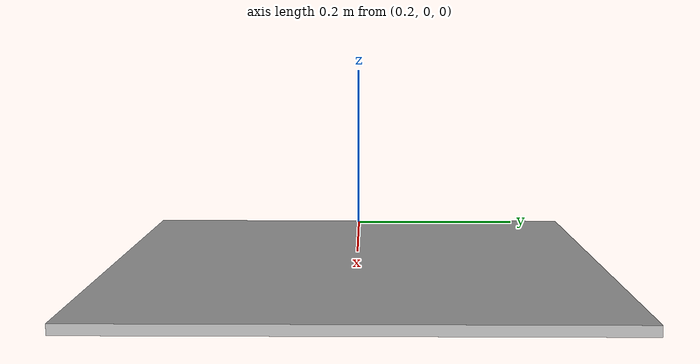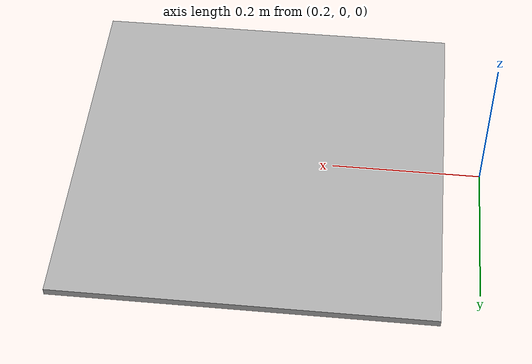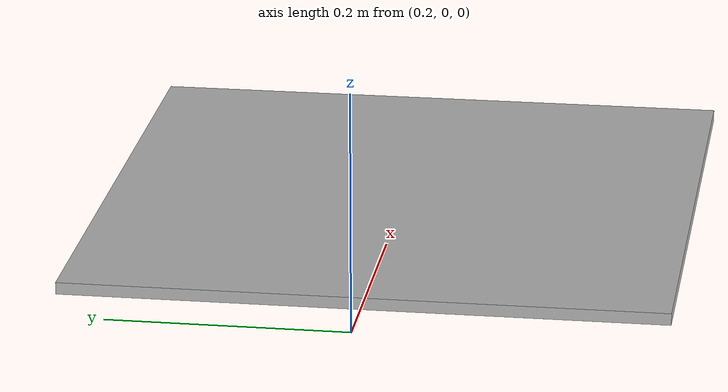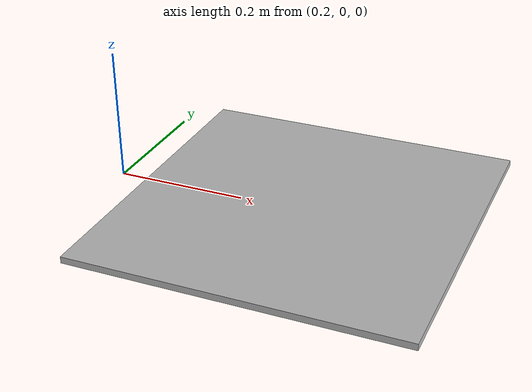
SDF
<?xml version='1.0'?>
<sdf version='1.4'>
  <model name="apriltag">
    <link name='link'>
      <pose>0.5 0 0.005 0 0 0</pose>
      <inertial>
        <mass>0.390</mass>
        <inertia>
          <ixx>0.00058</ixx>
          <ixy>0</ixy>
          <ixz>0</ixz>
          <iyy>0.00058</iyy>
          <iyz>0</iyz>
          <izz>0.00019</izz>
        </inertia>
      </inertial>
      <collision name='collision'>
        <geometry>
                <box>
                  <size>0.5 0.5 .01</size>
                </box>
        </geometry>
      </collision>

      <visual name='visual'>
        <geometry>
                <box>
                  <size>0.5 0.5 .01</size>
                </box>
        </geometry>

        <material>
          <script>
            <uri>model://apriltag/materials/scripts</uri>
            <uri>model://apriltag/materials/textures</uri>
            <name>Mark/Diffuse</name>
          </script>
        </material>
      </visual>
    </link>
  </model>
</sdf>
